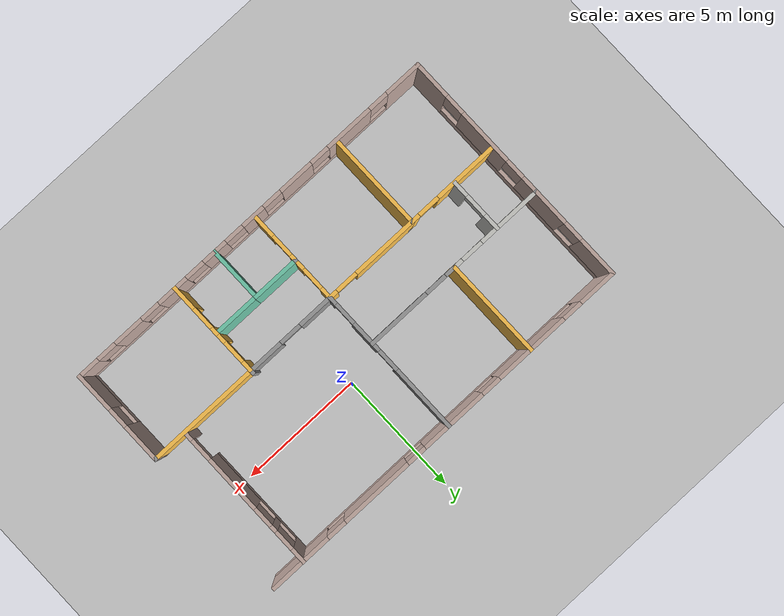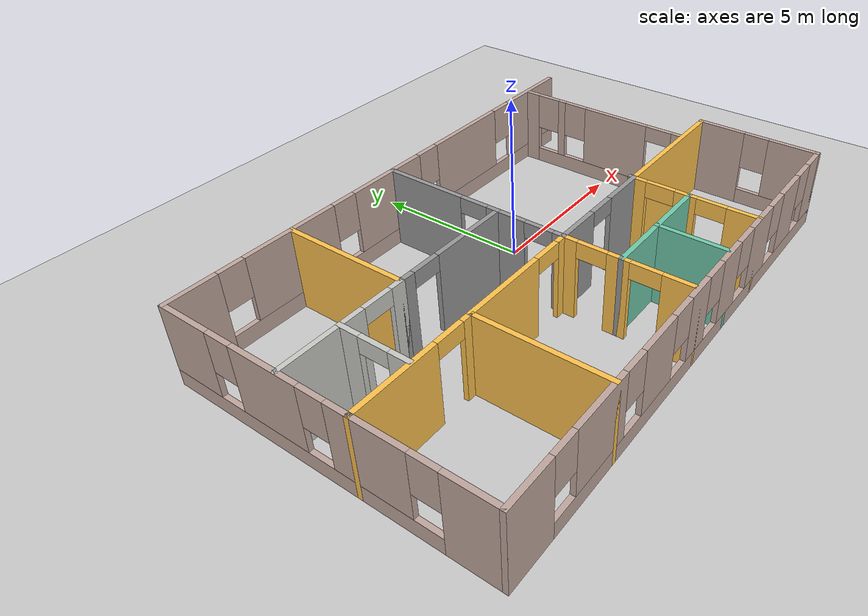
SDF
<sdf version="1.6">
 <world name="default">
  <model name="ground_plane">
   <static>1</static>
   <link name="link">
    <collision name="collision">
     <geometry><plane><normal>0 0 1</normal><size>100 100</size></plane></geometry>
     <surface>
      <contact><collide_bitmask>65535</collide_bitmask></contact>
      <friction><ode><mu>100</mu><mu2>50</mu2></ode></friction>
     </surface>
    </collision>
    <visual name="visual">
     <cast_shadows>0</cast_shadows>
     <geometry><plane><normal>0 0 1</normal><size>100 100</size></plane></geometry>
     <material>
      <script><uri>file://media/materials/scripts/gazebo.material</uri><name>Gazebo/Grey</name></script>
     </material>
    </visual>
   </link>
  </model>
  <model name="robothouse">
   <pose>-1.24708 -1.635 0 0 -0 0</pose>
   <link name="Wall_0">
    <pose>0 -4.925 0 0 -0 0</pose>
    <visual name="Wall_0_Visual_0">
     <pose>-7.22766 0 1.25 0 -0 0</pose>
     <geometry><box><size>1.54467 0.15 2.5</size></box></geometry>
     <material>
      <script><uri>file://media/materials/scripts/gazebo.material</uri><name>Gazebo/Grey</name></script>
      <ambient>0.760784 0.662745 0.627451 1</ambient>
     </material>
     <meta><layer>0</layer></meta>
    </visual>
    <collision name="Wall_0_Collision_0">
     <geometry><box><size>1.54467 0.15 2.5</size></box></geometry>
     <pose>-7.22766 0 1.25 0 -0 0</pose>
    </collision>
    <visual name="Wall_0_Visual_1">
     <pose>0.772336 0 0.25 0 -0 0</pose>
     <geometry><box><size>14.4553 0.15 0.5</size></box></geometry>
     <material>
      <script><uri>file://media/materials/scripts/gazebo.material</uri><name>Gazebo/Grey</name></script>
      <ambient>0.760784 0.662745 0.627451 1</ambient>
     </material>
     <meta><layer>0</layer></meta>
    </visual>
    <collision name="Wall_0_Collision_1">
     <geometry><box><size>14.4553 0.15 0.5</size></box></geometry>
     <pose>0.772336 0 0.25 0 -0 0</pose>
    </collision>
    <visual name="Wall_0_Visual_2">
     <pose>-4.67533 0 1.5 0 -0 0</pose>
     <geometry><box><size>1.96 0.15 2</size></box></geometry>
     <material>
      <script><uri>file://media/materials/scripts/gazebo.material</uri><name>Gazebo/Grey</name></script>
      <ambient>0.760784 0.662745 0.627451 1</ambient>
     </material>
     <meta><layer>0</layer></meta>
    </visual>
    <collision name="Wall_0_Collision_2">
     <geometry><box><size>1.96 0.15 2</size></box></geometry>
     <pose>-4.67533 0 1.5 0 -0 0</pose>
    </collision>
    <visual name="Wall_0_Visual_3">
     <pose>-2.18033 0 1.5 0 -0 0</pose>
     <geometry><box><size>1.43 0.15 2</size></box></geometry>
     <material>
      <script><uri>file://media/materials/scripts/gazebo.material</uri><name>Gazebo/Grey</name></script>
      <ambient>0.760784 0.662745 0.627451 1</ambient>
     </material>
     <meta><layer>0</layer></meta>
    </visual>
    <collision name="Wall_0_Collision_3">
     <geometry><box><size>1.43 0.15 2</size></box></geometry>
     <pose>-2.18033 0 1.5 0 -0 0</pose>
    </collision>
    <visual name="Wall_0_Visual_4">
     <pose>-0.180328 0 1.5 0 -0 0</pose>
     <geometry><box><size>0.97 0.15 2</size></box></geometry>
     <material>
      <script><uri>file://media/materials/scripts/gazebo.material</uri><name>Gazebo/Grey</name></script>
      <ambient>0.760784 0.662745 0.627451 1</ambient>
     </material>
     <meta><layer>0</layer></meta>
    </visual>
    <collision name="Wall_0_Collision_4">
     <geometry><box><size>0.97 0.15 2</size></box></geometry>
     <pose>-0.180328 0 1.5 0 -0 0</pose>
    </collision>
    <visual name="Wall_0_Visual_5">
     <pose>1.62467 0 1.5 0 -0 0</pose>
     <geometry><box><size>1.04 0.15 2</size></box></geometry>
     <material>
      <script><uri>file://media/materials/scripts/gazebo.material</uri><name>Gazebo/Grey</name></script>
      <ambient>0.760784 0.662745 0.627451 1</ambient>
     </material>
     <meta><layer>0</layer></meta>
    </visual>
    <collision name="Wall_0_Collision_5">
     <geometry><box><size>1.04 0.15 2</size></box></geometry>
     <pose>1.62467 0 1.5 0 -0 0</pose>
    </collision>
    <visual name="Wall_0_Visual_6">
     <pose>3.58967 0 1.5 0 -0 0</pose>
     <geometry><box><size>1.29 0.15 2</size></box></geometry>
     <material>
      <script><uri>file://media/materials/scripts/gazebo.material</uri><name>Gazebo/Grey</name></script>
      <ambient>0.760784 0.662745 0.627451 1</ambient>
     </material>
     <meta><layer>0</layer></meta>
    </visual>
    <collision name="Wall_0_Collision_6">
     <geometry><box><size>1.29 0.15 2</size></box></geometry>
     <pose>3.58967 0 1.5 0 -0 0</pose>
    </collision>
    <visual name="Wall_0_Visual_7">
     <pose>5.64967 0 1.5 0 -0 0</pose>
     <geometry><box><size>1.23 0.15 2</size></box></geometry>
     <material>
      <script><uri>file://media/materials/scripts/gazebo.material</uri><name>Gazebo/Grey</name></script>
      <ambient>0.760784 0.662745 0.627451 1</ambient>
     </material>
     <meta><layer>0</layer></meta>
    </visual>
    <collision name="Wall_0_Collision_7">
     <geometry><box><size>1.23 0.15 2</size></box></geometry>
     <pose>5.64967 0 1.5 0 -0 0</pose>
    </collision>
    <visual name="Wall_0_Visual_8">
     <pose>7.53234 0 1.5 0 -0 0</pose>
     <geometry><box><size>0.935327 0.15 2</size></box></geometry>
     <material>
      <script><uri>file://media/materials/scripts/gazebo.material</uri><name>Gazebo/Grey</name></script>
      <ambient>0.760784 0.662745 0.627451 1</ambient>
     </material>
     <meta><layer>0</layer></meta>
    </visual>
    <collision name="Wall_0_Collision_8">
     <geometry><box><size>0.935327 0.15 2</size></box></geometry>
     <pose>7.53234 0 1.5 0 -0 0</pose>
    </collision>
    <visual name="Wall_0_Visual_9">
     <pose>-6.05533 0 1.9 0 -0 0</pose>
     <geometry><box><size>0.8 0.15 1.2</size></box></geometry>
     <material>
      <script><uri>file://media/materials/scripts/gazebo.material</uri><name>Gazebo/Grey</name></script>
      <ambient>0.760784 0.662745 0.627451 1</ambient>
     </material>
     <meta><layer>0</layer></meta>
    </visual>
    <collision name="Wall_0_Collision_9">
     <geometry><box><size>0.8 0.15 1.2</size></box></geometry>
     <pose>-6.05533 0 1.9 0 -0 0</pose>
    </collision>
    <visual name="Wall_0_Visual_10">
     <pose>-3.29533 0 1.9 0 -0 0</pose>
     <geometry><box><size>0.8 0.15 1.2</size></box></geometry>
     <material>
      <script><uri>file://media/materials/scripts/gazebo.material</uri><name>Gazebo/Grey</name></script>
      <ambient>0.760784 0.662745 0.627451 1</ambient>
     </material>
     <meta><layer>0</layer></meta>
    </visual>
    <collision name="Wall_0_Collision_10">
     <geometry><box><size>0.8 0.15 1.2</size></box></geometry>
     <pose>-3.29533 0 1.9 0 -0 0</pose>
    </collision>
    <visual name="Wall_0_Visual_11">
     <pose>-1.06533 0 1.9 0 -0 0</pose>
     <geometry><box><size>0.8 0.15 1.2</size></box></geometry>
     <material>
      <script><uri>file://media/materials/scripts/gazebo.material</uri><name>Gazebo/Grey</name></script>
      <ambient>0.760784 0.662745 0.627451 1</ambient>
     </material>
     <meta><layer>0</layer></meta>
    </visual>
    <collision name="Wall_0_Collision_11">
     <geometry><box><size>0.8 0.15 1.2</size></box></geometry>
     <pose>-1.06533 0 1.9 0 -0 0</pose>
    </collision>
    <visual name="Wall_0_Visual_12">
     <pose>0.704672 0 1.9 0 -0 0</pose>
     <geometry><box><size>0.8 0.15 1.2</size></box></geometry>
     <material>
      <script><uri>file://media/materials/scripts/gazebo.material</uri><name>Gazebo/Grey</name></script>
      <ambient>0.760784 0.662745 0.627451 1</ambient>
     </material>
     <meta><layer>0</layer></meta>
    </visual>
    <collision name="Wall_0_Collision_12">
     <geometry><box><size>0.8 0.15 1.2</size></box></geometry>
     <pose>0.704672 0 1.9 0 -0 0</pose>
    </collision>
    <visual name="Wall_0_Visual_13">
     <pose>2.54467 0 1.9 0 -0 0</pose>
     <geometry><box><size>0.8 0.15 1.2</size></box></geometry>
     <material>
      <script><uri>file://media/materials/scripts/gazebo.material</uri><name>Gazebo/Grey</name></script>
      <ambient>0.760784 0.662745 0.627451 1</ambient>
     </material>
     <meta><layer>0</layer></meta>
    </visual>
    <collision name="Wall_0_Collision_13">
     <geometry><box><size>0.8 0.15 1.2</size></box></geometry>
     <pose>2.54467 0 1.9 0 -0 0</pose>
    </collision>
    <visual name="Wall_0_Visual_14">
     <pose>4.63467 0 1.9 0 -0 0</pose>
     <geometry><box><size>0.8 0.15 1.2</size></box></geometry>
     <material>
      <script><uri>file://media/materials/scripts/gazebo.material</uri><name>Gazebo/Grey</name></script>
      <ambient>0.760784 0.662745 0.627451 1</ambient>
     </material>
     <meta><layer>0</layer></meta>
    </visual>
    <collision name="Wall_0_Collision_14">
     <geometry><box><size>0.8 0.15 1.2</size></box></geometry>
     <pose>4.63467 0 1.9 0 -0 0</pose>
    </collision>
    <visual name="Wall_0_Visual_15">
     <pose>6.66467 0 1.9 0 -0 0</pose>
     <geometry><box><size>0.8 0.15 1.2</size></box></geometry>
     <material>
      <script><uri>file://media/materials/scripts/gazebo.material</uri><name>Gazebo/Grey</name></script>
      <ambient>0.760784 0.662745 0.627451 1</ambient>
     </material>
     <meta><layer>0</layer></meta>
    </visual>
    <collision name="Wall_0_Collision_15">
     <geometry><box><size>0.8 0.15 1.2</size></box></geometry>
     <pose>6.66467 0 1.9 0 -0 0</pose>
    </collision>
   </link>
   <link name="Wall_10">
    <collision name="Wall_10_Collision">
     <geometry><box><size>4 0.15 2.5</size></box></geometry>
     <pose>0 0 1.25 0 -0 0</pose>
    </collision>
    <visual name="Wall_10_Visual">
     <pose>0 0 1.25 0 -0 0</pose>
     <geometry><box><size>4 0.15 2.5</size></box></geometry>
     <material>
      <script><uri>file://media/materials/scripts/gazebo.material</uri><name>Gazebo/Grey</name></script>
      <ambient>1 0.764706 0.305882 1</ambient>
     </material>
     <meta><layer>0</layer></meta>
    </visual>
    <pose>-4.075 -3 0 0 -0 -1.5708</pose>
   </link>
   <link name="Wall_13">
    <collision name="Wall_13_Collision">
     <geometry><box><size>0.15 0.15 2.5</size></box></geometry>
     <pose>0 0 1.25 0 -0 0</pose>
    </collision>
    <visual name="Wall_13_Visual">
     <pose>0 0 1.25 0 -0 0</pose>
     <geometry><box><size>0.15 0.15 2.5</size></box></geometry>
     <material>
      <script><uri>file://media/materials/scripts/gazebo.material</uri><name>Gazebo/Grey</name></script>
      <ambient>1 1 1 1</ambient>
     </material>
     <meta><layer>0</layer></meta>
    </visual>
    <pose>-7.925 1.075 0 0 -0 0</pose>
   </link>
   <link name="Wall_14">
    <pose>-6 1.075 0 0 -0 0</pose>
    <visual name="Wall_14_Visual_0">
     <pose>-0.673769 0 1.25 0 -0 0</pose>
     <geometry><box><size>2.65246 0.15 2.5</size></box></geometry>
     <material>
      <script><uri>file://media/materials/scripts/gazebo.material</uri><name>Gazebo/CeilingTiled</name></script>
      <ambient>1 0.764706 0.305882 1</ambient>
     </material>
     <meta><layer>0</layer></meta>
    </visual>
    <collision name="Wall_14_Collision_0">
     <geometry><box><size>2.65246 0.15 2.5</size></box></geometry>
     <pose>-0.673769 0 1.25 0 -0 0</pose>
    </collision>
    <visual name="Wall_14_Visual_1">
     <pose>1.77623 0 1.25 0 -0 0</pose>
     <geometry><box><size>0.447537 0.15 2.5</size></box></geometry>
     <material>
      <script><uri>file://media/materials/scripts/gazebo.material</uri><name>Gazebo/CeilingTiled</name></script>
      <ambient>1 0.764706 0.305882 1</ambient>
     </material>
     <meta><layer>0</layer></meta>
    </visual>
    <collision name="Wall_14_Collision_1">
     <geometry><box><size>0.447537 0.15 2.5</size></box></geometry>
     <pose>1.77623 0 1.25 0 -0 0</pose>
    </collision>
    <visual name="Wall_14_Visual_2">
     <pose>1.10246 0 2.25 0 -0 0</pose>
     <geometry><box><size>0.9 0.15 0.5</size></box></geometry>
     <material>
      <script><uri>file://media/materials/scripts/gazebo.material</uri><name>Gazebo/CeilingTiled</name></script>
      <ambient>1 0.764706 0.305882 1</ambient>
     </material>
     <meta><layer>0</layer></meta>
    </visual>
    <collision name="Wall_14_Collision_2">
     <geometry><box><size>0.9 0.15 0.5</size></box></geometry>
     <pose>1.10246 0 2.25 0 -0 0</pose>
    </collision>
   </link>
   <link name="Wall_15">
    <collision name="Wall_15_Collision">
     <geometry><box><size>0.15 0.15 2.5</size></box></geometry>
     <pose>0 0 1.25 0 -0 0</pose>
    </collision>
    <visual name="Wall_15_Visual">
     <pose>0 0 1.25 0 -0 0</pose>
     <geometry><box><size>0.15 0.15 2.5</size></box></geometry>
     <material>
      <script><uri>file://media/materials/scripts/gazebo.material</uri><name>Gazebo/Grey</name></script>
      <ambient>1 1 1 1</ambient>
     </material>
     <meta><layer>0</layer></meta>
    </visual>
    <pose>-4.075 1.075 0 0 -0 0</pose>
   </link>
   <link name="Wall_16">
    <collision name="Wall_16_Collision">
     <geometry><box><size>4 0.15 2.5</size></box></geometry>
     <pose>0 0 1.25 0 -0 0</pose>
    </collision>
    <visual name="Wall_16_Visual">
     <pose>0 0 1.25 0 -0 0</pose>
     <geometry><box><size>4 0.15 2.5</size></box></geometry>
     <material>
      <script><uri>file://media/materials/scripts/gazebo.material</uri><name>Gazebo/Grey</name></script>
      <ambient>1 0.764706 0.305882 1</ambient>
     </material>
     <meta><layer>0</layer></meta>
    </visual>
    <pose>-4.075 3 0 0 -0 1.5708</pose>
   </link>
   <link name="Wall_2">
    <pose>-7.925 -0 0 0 -0 1.5708</pose>
    <visual name="Wall_2_Visual_0">
     <pose>-4.22011 0 1.25 0 -0 0</pose>
     <geometry><box><size>1.55978 0.15 2.5</size></box></geometry>
     <material>
      <script><uri>file://media/materials/scripts/gazebo.material</uri><name>Gazebo/Grey</name></script>
      <ambient>0.760784 0.662745 0.627451 1</ambient>
     </material>
     <meta><layer>0</layer></meta>
    </visual>
    <collision name="Wall_2_Collision_0">
     <geometry><box><size>1.55978 0.15 2.5</size></box></geometry>
     <pose>-4.22011 0 1.25 0 -0 0</pose>
    </collision>
    <visual name="Wall_2_Visual_1">
     <pose>0.77989 0 0.25 0 -0 0</pose>
     <geometry><box><size>8.44022 0.15 0.5</size></box></geometry>
     <material>
      <script><uri>file://media/materials/scripts/gazebo.material</uri><name>Gazebo/Grey</name></script>
      <ambient>0.760784 0.662745 0.627451 1</ambient>
     </material>
     <meta><layer>0</layer></meta>
    </visual>
    <collision name="Wall_2_Collision_1">
     <geometry><box><size>8.44022 0.15 0.5</size></box></geometry>
     <pose>0.77989 0 0.25 0 -0 0</pose>
    </collision>
    <visual name="Wall_2_Visual_2">
     <pose>-1.51522 0 1.5 0 -0 0</pose>
     <geometry><box><size>2.25 0.15 2</size></box></geometry>
     <material>
      <script><uri>file://media/materials/scripts/gazebo.material</uri><name>Gazebo/Grey</name></script>
      <ambient>0.760784 0.662745 0.627451 1</ambient>
     </material>
     <meta><layer>0</layer></meta>
    </visual>
    <collision name="Wall_2_Collision_2">
     <geometry><box><size>2.25 0.15 2</size></box></geometry>
     <pose>-1.51522 0 1.5 0 -0 0</pose>
    </collision>
    <visual name="Wall_2_Visual_3">
     <pose>1.47335 0 1.5 0 -0 0</pose>
     <geometry><box><size>2.12714 0.15 2</size></box></geometry>
     <material>
      <script><uri>file://media/materials/scripts/gazebo.material</uri><name>Gazebo/Grey</name></script>
      <ambient>0.760784 0.662745 0.627451 1</ambient>
     </material>
     <meta><layer>0</layer></meta>
    </visual>
    <collision name="Wall_2_Collision_3">
     <geometry><box><size>2.12714 0.15 2</size></box></geometry>
     <pose>1.47335 0 1.5 0 -0 0</pose>
    </collision>
    <visual name="Wall_2_Visual_4">
     <pose>4.16846 0 1.5 0 -0 0</pose>
     <geometry><box><size>1.66308 0.15 2</size></box></geometry>
     <material>
      <script><uri>file://media/materials/scripts/gazebo.material</uri><name>Gazebo/Grey</name></script>
      <ambient>0.760784 0.662745 0.627451 1</ambient>
     </material>
     <meta><layer>0</layer></meta>
    </visual>
    <collision name="Wall_2_Collision_4">
     <geometry><box><size>1.66308 0.15 2</size></box></geometry>
     <pose>4.16846 0 1.5 0 -0 0</pose>
    </collision>
    <visual name="Wall_2_Visual_5">
     <pose>-3.04022 0 1.9 0 -0 0</pose>
     <geometry><box><size>0.8 0.15 1.2</size></box></geometry>
     <material>
      <script><uri>file://media/materials/scripts/gazebo.material</uri><name>Gazebo/Grey</name></script>
      <ambient>0.760784 0.662745 0.627451 1</ambient>
     </material>
     <meta><layer>0</layer></meta>
    </visual>
    <collision name="Wall_2_Collision_5">
     <geometry><box><size>0.8 0.15 1.2</size></box></geometry>
     <pose>-3.04022 0 1.9 0 -0 0</pose>
    </collision>
    <visual name="Wall_2_Visual_6">
     <pose>0.00978 0 1.9 0 -0 0</pose>
     <geometry><box><size>0.8 0.15 1.2</size></box></geometry>
     <material>
      <script><uri>file://media/materials/scripts/gazebo.material</uri><name>Gazebo/Grey</name></script>
      <ambient>0.760784 0.662745 0.627451 1</ambient>
     </material>
     <meta><layer>0</layer></meta>
    </visual>
    <collision name="Wall_2_Collision_6">
     <geometry><box><size>0.8 0.15 1.2</size></box></geometry>
     <pose>0.00978 0 1.9 0 -0 0</pose>
    </collision>
    <visual name="Wall_2_Visual_7">
     <pose>2.93692 0 1.9 0 -0 0</pose>
     <geometry><box><size>0.8 0.15 1.2</size></box></geometry>
     <material>
      <script><uri>file://media/materials/scripts/gazebo.material</uri><name>Gazebo/Grey</name></script>
      <ambient>0.760784 0.662745 0.627451 1</ambient>
     </material>
     <meta><layer>0</layer></meta>
    </visual>
    <collision name="Wall_2_Collision_7">
     <geometry><box><size>0.8 0.15 1.2</size></box></geometry>
     <pose>2.93692 0 1.9 0 -0 0</pose>
    </collision>
   </link>
   <link name="Wall_21">
    <pose>-2.15 -1.075 0 0 -0 0</pose>
    <visual name="Wall_21_Visual_0">
     <pose>-0.654694 0 1.25 0 -0 0</pose>
     <geometry><box><size>2.69061 0.15 2.5</size></box></geometry>
     <material>
      <script><uri>file://media/materials/scripts/gazebo.material</uri><name>Gazebo/Grey</name></script>
      <ambient>1 0.764706 0.305882 1</ambient>
     </material>
     <meta><layer>0</layer></meta>
    </visual>
    <collision name="Wall_21_Collision_0">
     <geometry><box><size>2.69061 0.15 2.5</size></box></geometry>
     <pose>-0.654694 0 1.25 0 -0 0</pose>
    </collision>
    <visual name="Wall_21_Visual_1">
     <pose>1.79531 0 1.25 0 -0 0</pose>
     <geometry><box><size>0.409387 0.15 2.5</size></box></geometry>
     <material>
      <script><uri>file://media/materials/scripts/gazebo.material</uri><name>Gazebo/Grey</name></script>
      <ambient>1 0.764706 0.305882 1</ambient>
     </material>
     <meta><layer>0</layer></meta>
    </visual>
    <collision name="Wall_21_Collision_1">
     <geometry><box><size>0.409387 0.15 2.5</size></box></geometry>
     <pose>1.79531 0 1.25 0 -0 0</pose>
    </collision>
    <visual name="Wall_21_Visual_2">
     <pose>1.14061 0 2.25 0 -0 0</pose>
     <geometry><box><size>0.9 0.15 0.5</size></box></geometry>
     <material>
      <script><uri>file://media/materials/scripts/gazebo.material</uri><name>Gazebo/Grey</name></script>
      <ambient>1 0.764706 0.305882 1</ambient>
     </material>
     <meta><layer>0</layer></meta>
    </visual>
    <collision name="Wall_21_Collision_2">
     <geometry><box><size>0.9 0.15 0.5</size></box></geometry>
     <pose>1.14061 0 2.25 0 -0 0</pose>
    </collision>
   </link>
   <link name="Wall_22">
    <collision name="Wall_22_Collision">
     <geometry><box><size>0.15 0.15 2.5</size></box></geometry>
     <pose>0 0 1.25 0 -0 0</pose>
    </collision>
    <visual name="Wall_22_Visual">
     <pose>0 0 1.25 0 -0 0</pose>
     <geometry><box><size>0.15 0.15 2.5</size></box></geometry>
     <material>
      <script><uri>file://media/materials/scripts/gazebo.material</uri><name>Gazebo/Grey</name></script>
      <ambient>1 1 1 1</ambient>
     </material>
     <meta><layer>0</layer></meta>
    </visual>
    <pose>-0.225 -1.075 0 0 -0 0</pose>
   </link>
   <link name="Wall_26">
    <pose>-0.225 -3 0 0 -0 -1.5708</pose>
    <visual name="Wall_26_Visual_0">
     <pose>-1.74489 0 1.25 0 -0 0</pose>
     <geometry><box><size>0.51022 0.15 2.5</size></box></geometry>
     <material>
      <script><uri>file://media/materials/scripts/gazebo.material</uri><name>Gazebo/Grey</name></script>
      <ambient>1 0.764706 0.305882 1</ambient>
     </material>
     <meta><layer>0</layer></meta>
    </visual>
    <collision name="Wall_26_Collision_0">
     <geometry><box><size>0.51022 0.15 2.5</size></box></geometry>
     <pose>-1.74489 0 1.25 0 -0 0</pose>
    </collision>
    <visual name="Wall_26_Visual_1">
     <pose>-0.25978 0 1.25 0 -0 0</pose>
     <geometry><box><size>0.66 0.15 2.5</size></box></geometry>
     <material>
      <script><uri>file://media/materials/scripts/gazebo.material</uri><name>Gazebo/Grey</name></script>
      <ambient>1 0.764706 0.305882 1</ambient>
     </material>
     <meta><layer>0</layer></meta>
    </visual>
    <collision name="Wall_26_Collision_1">
     <geometry><box><size>0.66 0.15 2.5</size></box></geometry>
     <pose>-0.25978 0 1.25 0 -0 0</pose>
    </collision>
    <visual name="Wall_26_Visual_2">
     <pose>1.48511 0 1.25 0 -0 0</pose>
     <geometry><box><size>1.02978 0.15 2.5</size></box></geometry>
     <material>
      <script><uri>file://media/materials/scripts/gazebo.material</uri><name>Gazebo/Grey</name></script>
      <ambient>1 0.764706 0.305882 1</ambient>
     </material>
     <meta><layer>0</layer></meta>
    </visual>
    <collision name="Wall_26_Collision_2">
     <geometry><box><size>1.02978 0.15 2.5</size></box></geometry>
     <pose>1.48511 0 1.25 0 -0 0</pose>
    </collision>
    <visual name="Wall_26_Visual_3">
     <pose>-1.03978 0 2.25 0 -0 0</pose>
     <geometry><box><size>0.9 0.15 0.5</size></box></geometry>
     <material>
      <script><uri>file://media/materials/scripts/gazebo.material</uri><name>Gazebo/Grey</name></script>
      <ambient>1 0.764706 0.305882 1</ambient>
     </material>
     <meta><layer>0</layer></meta>
    </visual>
    <collision name="Wall_26_Collision_3">
     <geometry><box><size>0.9 0.15 0.5</size></box></geometry>
     <pose>-1.03978 0 2.25 0 -0 0</pose>
    </collision>
    <visual name="Wall_26_Visual_4">
     <pose>0.52022 0 2.25 0 -0 0</pose>
     <geometry><box><size>0.9 0.15 0.5</size></box></geometry>
     <material>
      <script><uri>file://media/materials/scripts/gazebo.material</uri><name>Gazebo/Grey</name></script>
      <ambient>1 0.764706 0.305882 1</ambient>
     </material>
     <meta><layer>0</layer></meta>
    </visual>
    <collision name="Wall_26_Collision_4">
     <geometry><box><size>0.9 0.15 0.5</size></box></geometry>
     <pose>0.52022 0 2.25 0 -0 0</pose>
    </collision>
   </link>
   <link name="Wall_28">
    <collision name="Wall_28_Collision">
     <geometry><box><size>0.15 0.15 2.5</size></box></geometry>
     <pose>0 0 1.25 0 -0 0</pose>
    </collision>
    <visual name="Wall_28_Visual">
     <pose>0 0 1.25 0 -0 0</pose>
     <geometry><box><size>0.15 0.15 2.5</size></box></geometry>
     <material>
      <script><uri>file://media/materials/scripts/gazebo.material</uri><name>Gazebo/Grey</name></script>
      <ambient>1 1 1 1</ambient>
     </material>
     <meta><layer>0</layer></meta>
    </visual>
    <pose>-0.225 -2.825 0 0 -0 0</pose>
   </link>
   <link name="Wall_29">
    <collision name="Wall_29_Collision">
     <geometry><box><size>2 0.15 2.5</size></box></geometry>
     <pose>0 0 1.25 0 -0 0</pose>
    </collision>
    <visual name="Wall_29_Visual">
     <pose>0 0 1.25 0 -0 0</pose>
     <geometry><box><size>2 0.15 2.5</size></box></geometry>
     <material>
      <script><uri>file://media/materials/scripts/gazebo.material</uri><name>Gazebo/Grey</name></script>
      <ambient>0.435294 0.796078 0.67451 1</ambient>
     </material>
     <meta><layer>0</layer></meta>
    </visual>
    <pose>0.700001 -2.825 0 0 -0 0</pose>
   </link>
   <link name="Wall_30">
    <collision name="Wall_30_Collision">
     <geometry><box><size>0.15 0.15 2.5</size></box></geometry>
     <pose>0 0 1.25 0 -0 0</pose>
    </collision>
    <visual name="Wall_30_Visual">
     <pose>0 0 1.25 0 -0 0</pose>
     <geometry><box><size>0.15 0.15 2.5</size></box></geometry>
     <material>
      <script><uri>file://media/materials/scripts/gazebo.material</uri><name>Gazebo/Grey</name></script>
      <ambient>1 1 1 1</ambient>
     </material>
     <meta><layer>0</layer></meta>
    </visual>
    <pose>1.625 -2.825 0 0 -0 0</pose>
   </link>
   <link name="Wall_31">
    <collision name="Wall_31_Collision">
     <geometry><box><size>2.25 0.15 2.5</size></box></geometry>
     <pose>0 0 1.25 0 -0 0</pose>
    </collision>
    <visual name="Wall_31_Visual">
     <pose>0 0 1.25 0 -0 0</pose>
     <geometry><box><size>2.25 0.15 2.5</size></box></geometry>
     <material>
      <script><uri>file://media/materials/scripts/gazebo.material</uri><name>Gazebo/Grey</name></script>
      <ambient>0.435294 0.796078 0.67451 1</ambient>
     </material>
     <meta><layer>0</layer></meta>
    </visual>
    <pose>1.625 -3.875 0 0 -0 -1.5708</pose>
   </link>
   <link name="Wall_33">
    <collision name="Wall_33_Collision">
     <geometry><box><size>2 0.15 2.5</size></box></geometry>
     <pose>0 0 1.25 0 -0 0</pose>
    </collision>
    <visual name="Wall_33_Visual">
     <pose>0 0 1.25 0 -0 0</pose>
     <geometry><box><size>2 0.15 2.5</size></box></geometry>
     <material>
      <script><uri>file://media/materials/scripts/gazebo.material</uri><name>Gazebo/Grey</name></script>
      <ambient>0.435294 0.796078 0.67451 1</ambient>
     </material>
     <meta><layer>0</layer></meta>
    </visual>
    <pose>2.55 -2.825 0 0 -0 0</pose>
   </link>
   <link name="Wall_34">
    <collision name="Wall_34_Collision">
     <geometry><box><size>0.15 0.15 2.5</size></box></geometry>
     <pose>0 0 1.25 0 -0 0</pose>
    </collision>
    <visual name="Wall_34_Visual">
     <pose>0 0 1.25 0 -0 0</pose>
     <geometry><box><size>0.15 0.15 2.5</size></box></geometry>
     <material>
      <script><uri>file://media/materials/scripts/gazebo.material</uri><name>Gazebo/Grey</name></script>
      <ambient>1 1 1 1</ambient>
     </material>
     <meta><layer>0</layer></meta>
    </visual>
    <pose>3.475 -2.825 0 0 -0 0</pose>
   </link>
   <link name="Wall_35">
    <pose>3.475 -3.875 0 0 -0 -1.5708</pose>
    <visual name="Wall_35_Visual_0">
     <pose>-0.95989 0 1.25 0 -0 0</pose>
     <geometry><box><size>0.33022 0.15 2.5</size></box></geometry>
     <material>
      <script><uri>file://media/materials/scripts/gazebo.material</uri><name>Gazebo/Grey</name></script>
      <ambient>1 0.764706 0.305882 1</ambient>
     </material>
     <meta><layer>0</layer></meta>
    </visual>
    <collision name="Wall_35_Collision_0">
     <geometry><box><size>0.33022 0.15 2.5</size></box></geometry>
     <pose>-0.95989 0 1.25 0 -0 0</pose>
    </collision>
    <visual name="Wall_35_Visual_1">
     <pose>0.61511 0 1.25 0 -0 0</pose>
     <geometry><box><size>1.01978 0.15 2.5</size></box></geometry>
     <material>
      <script><uri>file://media/materials/scripts/gazebo.material</uri><name>Gazebo/Grey</name></script>
      <ambient>1 0.764706 0.305882 1</ambient>
     </material>
     <meta><layer>0</layer></meta>
    </visual>
    <collision name="Wall_35_Collision_1">
     <geometry><box><size>1.01978 0.15 2.5</size></box></geometry>
     <pose>0.61511 0 1.25 0 -0 0</pose>
    </collision>
    <visual name="Wall_35_Visual_2">
     <pose>-0.34478 0 2.25 0 -0 0</pose>
     <geometry><box><size>0.9 0.15 0.5</size></box></geometry>
     <material>
      <script><uri>file://media/materials/scripts/gazebo.material</uri><name>Gazebo/Grey</name></script>
      <ambient>1 0.764706 0.305882 1</ambient>
     </material>
     <meta><layer>0</layer></meta>
    </visual>
    <collision name="Wall_35_Collision_2">
     <geometry><box><size>0.9 0.15 0.5</size></box></geometry>
     <pose>-0.34478 0 2.25 0 -0 0</pose>
    </collision>
   </link>
   <link name="Wall_38">
    <collision name="Wall_38_Collision">
     <geometry><box><size>0.15 0.15 2.5</size></box></geometry>
     <pose>0 0 1.25 0 -0 0</pose>
    </collision>
    <visual name="Wall_38_Visual">
     <pose>0 0 1.25 0 -0 0</pose>
     <geometry><box><size>0.15 0.15 2.5</size></box></geometry>
     <material>
      <script><uri>file://media/materials/scripts/gazebo.material</uri><name>Gazebo/Grey</name></script>
      <ambient>1 1 1 1</ambient>
     </material>
     <meta><layer>0</layer></meta>
    </visual>
    <pose>7.925 -1.075 0 0 -0 0</pose>
   </link>
   <link name="Wall_4">
    <pose>0 4.925 0 0 -0 0</pose>
    <visual name="Wall_4_Visual_0">
     <pose>-7.21623 0 1.25 0 -0 0</pose>
     <geometry><box><size>1.56754 0.15 2.5</size></box></geometry>
     <material>
      <script><uri>file://media/materials/scripts/gazebo.material</uri><name>Gazebo/Grey</name></script>
      <ambient>0.760784 0.662745 0.627451 1</ambient>
     </material>
     <meta><layer>0</layer></meta>
    </visual>
    <collision name="Wall_4_Collision_0">
     <geometry><box><size>1.56754 0.15 2.5</size></box></geometry>
     <pose>-7.21623 0 1.25 0 -0 0</pose>
    </collision>
    <visual name="Wall_4_Visual_1">
     <pose>0.783771 0 0.25 0 -0 0</pose>
     <geometry><box><size>14.4325 0.15 0.5</size></box></geometry>
     <material>
      <script><uri>file://media/materials/scripts/gazebo.material</uri><name>Gazebo/Grey</name></script>
      <ambient>0.760784 0.662745 0.627451 1</ambient>
     </material>
     <meta><layer>0</layer></meta>
    </visual>
    <collision name="Wall_4_Collision_1">
     <geometry><box><size>14.4325 0.15 0.5</size></box></geometry>
     <pose>0.783771 0 0.25 0 -0 0</pose>
    </collision>
    <visual name="Wall_4_Visual_2">
     <pose>-4.12376 0 1.5 0 -0 0</pose>
     <geometry><box><size>3.0174 0.15 2</size></box></geometry>
     <material>
      <script><uri>file://media/materials/scripts/gazebo.material</uri><name>Gazebo/Grey</name></script>
      <ambient>0.760784 0.662745 0.627451 1</ambient>
     </material>
     <meta><layer>0</layer></meta>
    </visual>
    <collision name="Wall_4_Collision_2">
     <geometry><box><size>3.0174 0.15 2</size></box></geometry>
     <pose>-4.12376 0 1.5 0 -0 0</pose>
    </collision>
    <visual name="Wall_4_Visual_3">
     <pose>-0.466056 0 1.5 0 -0 0</pose>
     <geometry><box><size>2.69801 0.15 2</size></box></geometry>
     <material>
      <script><uri>file://media/materials/scripts/gazebo.material</uri><name>Gazebo/Grey</name></script>
      <ambient>0.760784 0.662745 0.627451 1</ambient>
     </material>
     <meta><layer>0</layer></meta>
    </visual>
    <collision name="Wall_4_Collision_3">
     <geometry><box><size>2.69801 0.15 2</size></box></geometry>
     <pose>-0.466056 0 1.5 0 -0 0</pose>
    </collision>
    <visual name="Wall_4_Visual_4">
     <pose>3.14602 0 1.5 0 -0 0</pose>
     <geometry><box><size>2.92614 0.15 2</size></box></geometry>
     <material>
      <script><uri>file://media/materials/scripts/gazebo.material</uri><name>Gazebo/Grey</name></script>
      <ambient>0.760784 0.662745 0.627451 1</ambient>
     </material>
     <meta><layer>0</layer></meta>
    </visual>
    <collision name="Wall_4_Collision_4">
     <geometry><box><size>2.92614 0.15 2</size></box></geometry>
     <pose>3.14602 0 1.5 0 -0 0</pose>
    </collision>
    <visual name="Wall_4_Visual_5">
     <pose>6.70455 0 1.5 0 -0 0</pose>
     <geometry><box><size>2.59091 0.15 2</size></box></geometry>
     <material>
      <script><uri>file://media/materials/scripts/gazebo.material</uri><name>Gazebo/Grey</name></script>
      <ambient>0.760784 0.662745 0.627451 1</ambient>
     </material>
     <meta><layer>0</layer></meta>
    </visual>
    <collision name="Wall_4_Collision_5">
     <geometry><box><size>2.59091 0.15 2</size></box></geometry>
     <pose>6.70455 0 1.5 0 -0 0</pose>
    </collision>
    <visual name="Wall_4_Visual_6">
     <pose>-6.03246 0 1.9 0 -0 0</pose>
     <geometry><box><size>0.8 0.15 1.2</size></box></geometry>
     <material>
      <script><uri>file://media/materials/scripts/gazebo.material</uri><name>Gazebo/Grey</name></script>
      <ambient>0.760784 0.662745 0.627451 1</ambient>
     </material>
     <meta><layer>0</layer></meta>
    </visual>
    <collision name="Wall_4_Collision_6">
     <geometry><box><size>0.8 0.15 1.2</size></box></geometry>
     <pose>-6.03246 0 1.9 0 -0 0</pose>
    </collision>
    <visual name="Wall_4_Visual_7">
     <pose>-2.21506 0 1.9 0 -0 0</pose>
     <geometry><box><size>0.8 0.15 1.2</size></box></geometry>
     <material>
      <script><uri>file://media/materials/scripts/gazebo.material</uri><name>Gazebo/Grey</name></script>
      <ambient>0.760784 0.662745 0.627451 1</ambient>
     </material>
     <meta><layer>0</layer></meta>
    </visual>
    <collision name="Wall_4_Collision_7">
     <geometry><box><size>0.8 0.15 1.2</size></box></geometry>
     <pose>-2.21506 0 1.9 0 -0 0</pose>
    </collision>
    <visual name="Wall_4_Visual_8">
     <pose>1.28295 0 1.9 0 -0 0</pose>
     <geometry><box><size>0.8 0.15 1.2</size></box></geometry>
     <material>
      <script><uri>file://media/materials/scripts/gazebo.material</uri><name>Gazebo/Grey</name></script>
      <ambient>0.760784 0.662745 0.627451 1</ambient>
     </material>
     <meta><layer>0</layer></meta>
    </visual>
    <collision name="Wall_4_Collision_8">
     <geometry><box><size>0.8 0.15 1.2</size></box></geometry>
     <pose>1.28295 0 1.9 0 -0 0</pose>
    </collision>
    <visual name="Wall_4_Visual_9">
     <pose>5.00909 0 1.9 0 -0 0</pose>
     <geometry><box><size>0.8 0.15 1.2</size></box></geometry>
     <material>
      <script><uri>file://media/materials/scripts/gazebo.material</uri><name>Gazebo/Grey</name></script>
      <ambient>0.760784 0.662745 0.627451 1</ambient>
     </material>
     <meta><layer>0</layer></meta>
    </visual>
    <collision name="Wall_4_Collision_9">
     <geometry><box><size>0.8 0.15 1.2</size></box></geometry>
     <pose>5.00909 0 1.9 0 -0 0</pose>
    </collision>
   </link>
   <link name="Wall_43">
    <collision name="Wall_43_Collision">
     <geometry><box><size>0.15 0.15 2.5</size></box></geometry>
     <pose>0 0 1.25 0 -0 0</pose>
    </collision>
    <visual name="Wall_43_Visual">
     <pose>0 0 1.25 0 -0 0</pose>
     <geometry><box><size>0.15 0.15 2.5</size></box></geometry>
     <material>
      <script><uri>file://media/materials/scripts/gazebo.material</uri><name>Gazebo/Grey</name></script>
      <ambient>1 1 1 1</ambient>
     </material>
     <meta><layer>0</layer></meta>
    </visual>
    <pose>3.475 -2.825 0 0 -0 0</pose>
   </link>
   <link name="Wall_45">
    <collision name="Wall_45_Collision">
     <geometry><box><size>0.15 0.15 2.5</size></box></geometry>
     <pose>0 0 1.25 0 -0 0</pose>
    </collision>
    <visual name="Wall_45_Visual">
     <pose>0 0 1.25 0 -0 0</pose>
     <geometry><box><size>0.15 0.15 2.5</size></box></geometry>
     <material>
      <script><uri>file://media/materials/scripts/gazebo.material</uri><name>Gazebo/Grey</name></script>
      <ambient>1 1 1 1</ambient>
     </material>
     <meta><layer>0</layer></meta>
    </visual>
    <pose>3.475 -0.975 0 0 -0 0</pose>
   </link>
   <link name="Wall_50">
    <collision name="Wall_50_Collision">
     <geometry><box><size>4.6 0.15 2.5</size></box></geometry>
     <pose>0 0 1.25 0 -0 0</pose>
    </collision>
    <visual name="Wall_50_Visual">
     <pose>0 0 1.25 0 -0 0</pose>
     <geometry><box><size>4.6 0.15 2.5</size></box></geometry>
     <material>
      <script><uri>file://media/materials/scripts/gazebo.material</uri><name>Gazebo/Grey</name></script>
      <ambient>1 0.764706 0.305882 1</ambient>
     </material>
     <meta><layer>0</layer></meta>
    </visual>
    <pose>5.7 -1.075 0 0 -0 0</pose>
   </link>
   <link name="Wall_51">
    <pose>7.925 -3 0 0 -0 -1.5708</pose>
    <visual name="Wall_51_Visual_0">
     <pose>-1.20489 0 1.25 0 -0 0</pose>
     <geometry><box><size>1.59022 0.15 2.5</size></box></geometry>
     <material>
      <script><uri>file://media/materials/scripts/gazebo.material</uri><name>Gazebo/Grey</name></script>
      <ambient>0.760784 0.662745 0.627451 1</ambient>
     </material>
     <meta><layer>0</layer></meta>
    </visual>
    <collision name="Wall_51_Collision_0">
     <geometry><box><size>1.59022 0.15 2.5</size></box></geometry>
     <pose>-1.20489 0 1.25 0 -0 0</pose>
    </collision>
    <visual name="Wall_51_Visual_1">
     <pose>0.79511 0 0.25 0 -0 0</pose>
     <geometry><box><size>2.40978 0.15 0.5</size></box></geometry>
     <material>
      <script><uri>file://media/materials/scripts/gazebo.material</uri><name>Gazebo/Grey</name></script>
      <ambient>0.760784 0.662745 0.627451 1</ambient>
     </material>
     <meta><layer>0</layer></meta>
    </visual>
    <collision name="Wall_51_Collision_1">
     <geometry><box><size>2.40978 0.15 0.5</size></box></geometry>
     <pose>0.79511 0 0.25 0 -0 0</pose>
    </collision>
    <visual name="Wall_51_Visual_2">
     <pose>1.19511 0 1.5 0 -0 0</pose>
     <geometry><box><size>1.60978 0.15 2</size></box></geometry>
     <material>
      <script><uri>file://media/materials/scripts/gazebo.material</uri><name>Gazebo/Grey</name></script>
      <ambient>0.760784 0.662745 0.627451 1</ambient>
     </material>
     <meta><layer>0</layer></meta>
    </visual>
    <collision name="Wall_51_Collision_2">
     <geometry><box><size>1.60978 0.15 2</size></box></geometry>
     <pose>1.19511 0 1.5 0 -0 0</pose>
    </collision>
    <visual name="Wall_51_Visual_3">
     <pose>-0.00978 0 1.9 0 -0 0</pose>
     <geometry><box><size>0.8 0.15 1.2</size></box></geometry>
     <material>
      <script><uri>file://media/materials/scripts/gazebo.material</uri><name>Gazebo/Grey</name></script>
      <ambient>0.760784 0.662745 0.627451 1</ambient>
     </material>
     <meta><layer>0</layer></meta>
    </visual>
    <collision name="Wall_51_Collision_3">
     <geometry><box><size>0.8 0.15 1.2</size></box></geometry>
     <pose>-0.00978 0 1.9 0 -0 0</pose>
    </collision>
   </link>
   <link name="Wall_53">
    <pose>3.475 -1.95 0 0 -0 -1.5708</pose>
    <visual name="Wall_53_Visual_0">
     <pose>-0.69989 0 1.25 0 -0 0</pose>
     <geometry><box><size>0.50022 0.15 2.5</size></box></geometry>
     <material>
      <script><uri>file://media/materials/scripts/gazebo.material</uri><name>Gazebo/Grey</name></script>
      <ambient>1 0.764706 0.305882 1</ambient>
     </material>
     <meta><layer>0</layer></meta>
    </visual>
    <collision name="Wall_53_Collision_0">
     <geometry><box><size>0.50022 0.15 2.5</size></box></geometry>
     <pose>-0.69989 0 1.25 0 -0 0</pose>
    </collision>
    <visual name="Wall_53_Visual_1">
     <pose>0.70011 0 1.25 0 -0 0</pose>
     <geometry><box><size>0.49978 0.15 2.5</size></box></geometry>
     <material>
      <script><uri>file://media/materials/scripts/gazebo.material</uri><name>Gazebo/Grey</name></script>
      <ambient>1 0.764706 0.305882 1</ambient>
     </material>
     <meta><layer>0</layer></meta>
    </visual>
    <collision name="Wall_53_Collision_1">
     <geometry><box><size>0.49978 0.15 2.5</size></box></geometry>
     <pose>0.70011 0 1.25 0 -0 0</pose>
    </collision>
    <visual name="Wall_53_Visual_2">
     <pose>0.00022 0 2.25 0 -0 0</pose>
     <geometry><box><size>0.9 0.15 0.5</size></box></geometry>
     <material>
      <script><uri>file://media/materials/scripts/gazebo.material</uri><name>Gazebo/Grey</name></script>
      <ambient>1 0.764706 0.305882 1</ambient>
     </material>
     <meta><layer>0</layer></meta>
    </visual>
    <collision name="Wall_53_Collision_2">
     <geometry><box><size>0.9 0.15 0.5</size></box></geometry>
     <pose>0.00022 0 2.25 0 -0 0</pose>
    </collision>
   </link>
   <link name="Wall_58">
    <pose>-2.15 1.075 0 0 -0 0</pose>
    <visual name="Wall_58_Visual_0">
     <pose>-1.75237 0 1.25 0 -0 0</pose>
     <geometry><box><size>0.495263 0.15 2.5</size></box></geometry>
     <material>
      <script><uri>file://media/materials/scripts/gazebo.material</uri><name>Gazebo/Grey</name></script>
      <ambient>1 1 1 1</ambient>
     </material>
     <meta><layer>0</layer></meta>
    </visual>
    <collision name="Wall_58_Collision_0">
     <geometry><box><size>0.495263 0.15 2.5</size></box></geometry>
     <pose>-1.75237 0 1.25 0 -0 0</pose>
    </collision>
    <visual name="Wall_58_Visual_1">
     <pose>0.697631 0 1.25 0 -0 0</pose>
     <geometry><box><size>2.60474 0.15 2.5</size></box></geometry>
     <material>
      <script><uri>file://media/materials/scripts/gazebo.material</uri><name>Gazebo/Grey</name></script>
      <ambient>1 1 1 1</ambient>
     </material>
     <meta><layer>0</layer></meta>
    </visual>
    <collision name="Wall_58_Collision_1">
     <geometry><box><size>2.60474 0.15 2.5</size></box></geometry>
     <pose>0.697631 0 1.25 0 -0 0</pose>
    </collision>
    <visual name="Wall_58_Visual_2">
     <pose>-1.05474 0 2.25 0 -0 0</pose>
     <geometry><box><size>0.9 0.15 0.5</size></box></geometry>
     <material>
      <script><uri>file://media/materials/scripts/gazebo.material</uri><name>Gazebo/Grey</name></script>
      <ambient>1 1 1 1</ambient>
     </material>
     <meta><layer>0</layer></meta>
    </visual>
    <collision name="Wall_58_Collision_2">
     <geometry><box><size>0.9 0.15 0.5</size></box></geometry>
     <pose>-1.05474 0 2.25 0 -0 0</pose>
    </collision>
   </link>
   <link name="Wall_61">
    <pose>-0.225 3 0 0 -0 1.5708</pose>
    <visual name="Wall_61_Visual_0">
     <pose>-1.79201 0 1.25 0 -0 0</pose>
     <geometry><box><size>0.415971 0.15 2.5</size></box></geometry>
     <material>
      <script><uri>file://media/materials/scripts/gazebo.material</uri><name>Gazebo/Grey</name></script>
      <ambient>1 1 1 1</ambient>
     </material>
     <meta><layer>0</layer></meta>
    </visual>
    <collision name="Wall_61_Collision_0">
     <geometry><box><size>0.415971 0.15 2.5</size></box></geometry>
     <pose>-1.79201 0 1.25 0 -0 0</pose>
    </collision>
    <visual name="Wall_61_Visual_1">
     <pose>0.657985 0 1.25 0 -0 0</pose>
     <geometry><box><size>2.68403 0.15 2.5</size></box></geometry>
     <material>
      <script><uri>file://media/materials/scripts/gazebo.material</uri><name>Gazebo/Grey</name></script>
      <ambient>1 1 1 1</ambient>
     </material>
     <meta><layer>0</layer></meta>
    </visual>
    <collision name="Wall_61_Collision_1">
     <geometry><box><size>2.68403 0.15 2.5</size></box></geometry>
     <pose>0.657985 0 1.25 0 -0 0</pose>
    </collision>
    <visual name="Wall_61_Visual_2">
     <pose>-1.13403 0 2.25 0 -0 0</pose>
     <geometry><box><size>0.9 0.15 0.5</size></box></geometry>
     <material>
      <script><uri>file://media/materials/scripts/gazebo.material</uri><name>Gazebo/Grey</name></script>
      <ambient>1 1 1 1</ambient>
     </material>
     <meta><layer>0</layer></meta>
    </visual>
    <collision name="Wall_61_Collision_2">
     <geometry><box><size>0.9 0.15 0.5</size></box></geometry>
     <pose>-1.13403 0 2.25 0 -0 0</pose>
    </collision>
   </link>
   <link name="Wall_68">
    <pose>6.575 2 0 0 -0 -1.5708</pose>
    <visual name="Wall_68_Visual_0">
     <pose>-2.67795 0 1.25 0 -0 0</pose>
     <geometry><box><size>0.644092 0.15 2.5</size></box></geometry>
     <material>
      <script><uri>file://media/materials/scripts/gazebo.material</uri><name>Gazebo/Grey</name></script>
      <ambient>0.760784 0.662745 0.627451 1</ambient>
     </material>
     <meta><layer>0</layer></meta>
    </visual>
    <collision name="Wall_68_Collision_0">
     <geometry><box><size>0.644092 0.15 2.5</size></box></geometry>
     <pose>-2.67795 0 1.25 0 -0 0</pose>
    </collision>
    <visual name="Wall_68_Visual_1">
     <pose>2.85011 0 1.25 0 -0 0</pose>
     <geometry><box><size>0.29978 0.15 2.5</size></box></geometry>
     <material>
      <script><uri>file://media/materials/scripts/gazebo.material</uri><name>Gazebo/Grey</name></script>
      <ambient>0.760784 0.662745 0.627451 1</ambient>
     </material>
     <meta><layer>0</layer></meta>
    </visual>
    <collision name="Wall_68_Collision_1">
     <geometry><box><size>0.29978 0.15 2.5</size></box></geometry>
     <pose>2.85011 0 1.25 0 -0 0</pose>
    </collision>
    <visual name="Wall_68_Visual_2">
     <pose>-0.277844 0 0.25 0 -0 0</pose>
     <geometry><box><size>4.15613 0.15 0.5</size></box></geometry>
     <material>
      <script><uri>file://media/materials/scripts/gazebo.material</uri><name>Gazebo/Grey</name></script>
      <ambient>0.760784 0.662745 0.627451 1</ambient>
     </material>
     <meta><layer>0</layer></meta>
    </visual>
    <collision name="Wall_68_Collision_2">
     <geometry><box><size>4.15613 0.15 0.5</size></box></geometry>
     <pose>-0.277844 0 0.25 0 -0 0</pose>
    </collision>
    <visual name="Wall_68_Visual_3">
     <pose>-1.4236 0 1.5 0 -0 0</pose>
     <geometry><box><size>0.264612 0.15 2</size></box></geometry>
     <material>
      <script><uri>file://media/materials/scripts/gazebo.material</uri><name>Gazebo/Grey</name></script>
      <ambient>0.760784 0.662745 0.627451 1</ambient>
     </material>
     <meta><layer>0</layer></meta>
    </visual>
    <collision name="Wall_68_Collision_3">
     <geometry><box><size>0.264612 0.15 2</size></box></geometry>
     <pose>-1.4236 0 1.5 0 -0 0</pose>
    </collision>
    <visual name="Wall_68_Visual_4">
     <pose>0.654462 0 1.5 0 -0 0</pose>
     <geometry><box><size>2.29152 0.15 2</size></box></geometry>
     <material>
      <script><uri>file://media/materials/scripts/gazebo.material</uri><name>Gazebo/Grey</name></script>
      <ambient>0.760784 0.662745 0.627451 1</ambient>
     </material>
     <meta><layer>0</layer></meta>
    </visual>
    <collision name="Wall_68_Collision_4">
     <geometry><box><size>2.29152 0.15 2</size></box></geometry>
     <pose>0.654462 0 1.5 0 -0 0</pose>
    </collision>
    <visual name="Wall_68_Visual_5">
     <pose>-1.95591 0 1.9 0 -0 0</pose>
     <geometry><box><size>0.8 0.15 1.2</size></box></geometry>
     <material>
      <script><uri>file://media/materials/scripts/gazebo.material</uri><name>Gazebo/Grey</name></script>
      <ambient>0.760784 0.662745 0.627451 1</ambient>
     </material>
     <meta><layer>0</layer></meta>
    </visual>
    <collision name="Wall_68_Collision_5">
     <geometry><box><size>0.8 0.15 1.2</size></box></geometry>
     <pose>-1.95591 0 1.9 0 -0 0</pose>
    </collision>
    <visual name="Wall_68_Visual_6">
     <pose>-0.891295 0 1.9 0 -0 0</pose>
     <geometry><box><size>0.8 0.15 1.2</size></box></geometry>
     <material>
      <script><uri>file://media/materials/scripts/gazebo.material</uri><name>Gazebo/Grey</name></script>
      <ambient>0.760784 0.662745 0.627451 1</ambient>
     </material>
     <meta><layer>0</layer></meta>
    </visual>
    <collision name="Wall_68_Collision_6">
     <geometry><box><size>0.8 0.15 1.2</size></box></geometry>
     <pose>-0.891295 0 1.9 0 -0 0</pose>
    </collision>
    <visual name="Wall_68_Visual_7">
     <pose>2.25022 0 2.25 0 -0 0</pose>
     <geometry><box><size>0.9 0.15 0.5</size></box></geometry>
     <material>
      <script><uri>file://media/materials/scripts/gazebo.material</uri><name>Gazebo/Grey</name></script>
      <ambient>0.760784 0.662745 0.627451 1</ambient>
     </material>
     <meta><layer>0</layer></meta>
    </visual>
    <collision name="Wall_68_Collision_7">
     <geometry><box><size>0.9 0.15 0.5</size></box></geometry>
     <pose>2.25022 0 2.25 0 -0 0</pose>
    </collision>
   </link>
   <link name="Wall_7">
    <collision name="Wall_7_Collision">
     <geometry><box><size>0.15 0.15 2.5</size></box></geometry>
     <pose>0 0 1.25 0 -0 0</pose>
    </collision>
    <visual name="Wall_7_Visual">
     <pose>0 0 1.25 0 -0 0</pose>
     <geometry><box><size>0.15 0.15 2.5</size></box></geometry>
     <material>
      <script><uri>file://media/materials/scripts/gazebo.material</uri><name>Gazebo/Grey</name></script>
      <ambient>1 1 1 1</ambient>
     </material>
     <meta><layer>0</layer></meta>
    </visual>
    <pose>-7.925 -1.075 0 0 -0 0</pose>
   </link>
   <link name="Wall_70">
    <pose>-0.225 -0 0 0 -0 -1.5708</pose>
    <visual name="Wall_70_Visual_0">
     <pose>-0.641923 0 1.25 0 -0 0</pose>
     <geometry><box><size>1.01615 0.15 2.5</size></box></geometry>
     <material>
      <script><uri>file://media/materials/scripts/gazebo.material</uri><name>Gazebo/Grey</name></script>
      <ambient>1 1 1 1</ambient>
     </material>
     <meta><layer>0</layer></meta>
    </visual>
    <collision name="Wall_70_Collision_0">
     <geometry><box><size>1.01615 0.15 2.5</size></box></geometry>
     <pose>-0.641923 0 1.25 0 -0 0</pose>
    </collision>
    <visual name="Wall_70_Visual_1">
     <pose>0.958077 0 1.25 0 -0 0</pose>
     <geometry><box><size>0.383846 0.15 2.5</size></box></geometry>
     <material>
      <script><uri>file://media/materials/scripts/gazebo.material</uri><name>Gazebo/Grey</name></script>
      <ambient>1 1 1 1</ambient>
     </material>
     <meta><layer>0</layer></meta>
    </visual>
    <collision name="Wall_70_Collision_1">
     <geometry><box><size>0.383846 0.15 2.5</size></box></geometry>
     <pose>0.958077 0 1.25 0 -0 0</pose>
    </collision>
    <visual name="Wall_70_Visual_2">
     <pose>0.316154 0 2.25 0 -0 0</pose>
     <geometry><box><size>0.9 0.15 0.5</size></box></geometry>
     <material>
      <script><uri>file://media/materials/scripts/gazebo.material</uri><name>Gazebo/Grey</name></script>
      <ambient>1 1 1 1</ambient>
     </material>
     <meta><layer>0</layer></meta>
    </visual>
    <collision name="Wall_70_Collision_2">
     <geometry><box><size>0.9 0.15 0.5</size></box></geometry>
     <pose>0.316154 0 2.25 0 -0 0</pose>
    </collision>
   </link>
   <link name="Wall_71">
    <collision name="Wall_71_Collision">
     <geometry><box><size>0.16 0.15 2.5</size></box></geometry>
     <pose>0 0 1.25 0 -0 0</pose>
    </collision>
    <visual name="Wall_71_Visual">
     <pose>0 0 1.25 0 -0 0</pose>
     <geometry><box><size>0.16 0.15 2.5</size></box></geometry>
     <material>
      <script><uri>file://media/materials/scripts/gazebo.material</uri><name>Gazebo/Grey</name></script>
      <ambient>1 1 1 1</ambient>
     </material>
     <meta><layer>0</layer></meta>
    </visual>
    <pose>-0.22 -1.075 0 0 -0 0</pose>
   </link>
   <link name="Wall_72">
    <pose>1.63 -1.075 0 0 -0 0</pose>
    <visual name="Wall_72_Visual_0">
     <pose>-1.18766 0 1.25 0 -0 0</pose>
     <geometry><box><size>1.46467 0.15 2.5</size></box></geometry>
     <material>
      <script><uri>file://media/materials/scripts/gazebo.material</uri><name>Gazebo/Grey</name></script>
      <ambient>1 1 1 1</ambient>
     </material>
     <meta><layer>0</layer></meta>
    </visual>
    <collision name="Wall_72_Collision_0">
     <geometry><box><size>1.46467 0.15 2.5</size></box></geometry>
     <pose>-1.18766 0 1.25 0 -0 0</pose>
    </collision>
    <visual name="Wall_72_Visual_1">
     <pose>1.18234 0 1.25 0 -0 0</pose>
     <geometry><box><size>1.47533 0.15 2.5</size></box></geometry>
     <material>
      <script><uri>file://media/materials/scripts/gazebo.material</uri><name>Gazebo/Grey</name></script>
      <ambient>1 1 1 1</ambient>
     </material>
     <meta><layer>0</layer></meta>
    </visual>
    <collision name="Wall_72_Collision_1">
     <geometry><box><size>1.47533 0.15 2.5</size></box></geometry>
     <pose>1.18234 0 1.25 0 -0 0</pose>
    </collision>
    <visual name="Wall_72_Visual_2">
     <pose>-0.005328 0 2.25 0 -0 0</pose>
     <geometry><box><size>0.9 0.15 0.5</size></box></geometry>
     <material>
      <script><uri>file://media/materials/scripts/gazebo.material</uri><name>Gazebo/Grey</name></script>
      <ambient>1 1 1 1</ambient>
     </material>
     <meta><layer>0</layer></meta>
    </visual>
    <collision name="Wall_72_Collision_2">
     <geometry><box><size>0.9 0.15 0.5</size></box></geometry>
     <pose>-0.005328 0 2.25 0 -0 0</pose>
    </collision>
   </link>
   <link name="Wall_75">
    <pose>-6.075 0.025 0 0 -0 -1.5708</pose>
    <visual name="Wall_75_Visual_0">
     <pose>-0.782235 0 1.25 0 -0 0</pose>
     <geometry><box><size>0.685529 0.15 2.5</size></box></geometry>
     <material>
      <script><uri>file://media/materials/scripts/gazebo.material</uri><name>Gazebo/CeilingTiled</name></script>
      <ambient>0.435294 0.796078 0.67451 1</ambient>
     </material>
     <meta><layer>0</layer></meta>
    </visual>
    <collision name="Wall_75_Collision_0">
     <geometry><box><size>0.685529 0.15 2.5</size></box></geometry>
     <pose>-0.782235 0 1.25 0 -0 0</pose>
    </collision>
    <visual name="Wall_75_Visual_1">
     <pose>0.792765 0 1.25 0 -0 0</pose>
     <geometry><box><size>0.664471 0.15 2.5</size></box></geometry>
     <material>
      <script><uri>file://media/materials/scripts/gazebo.material</uri><name>Gazebo/CeilingTiled</name></script>
      <ambient>0.435294 0.796078 0.67451 1</ambient>
     </material>
     <meta><layer>0</layer></meta>
    </visual>
    <collision name="Wall_75_Collision_1">
     <geometry><box><size>0.664471 0.15 2.5</size></box></geometry>
     <pose>0.792765 0 1.25 0 -0 0</pose>
    </collision>
    <visual name="Wall_75_Visual_2">
     <pose>0.010529 0 2.25 0 -0 0</pose>
     <geometry><box><size>0.9 0.15 0.5</size></box></geometry>
     <material>
      <script><uri>file://media/materials/scripts/gazebo.material</uri><name>Gazebo/CeilingTiled</name></script>
      <ambient>0.435294 0.796078 0.67451 1</ambient>
     </material>
     <meta><layer>0</layer></meta>
    </visual>
    <collision name="Wall_75_Collision_2">
     <geometry><box><size>0.9 0.15 0.5</size></box></geometry>
     <pose>0.010529 0 2.25 0 -0 0</pose>
    </collision>
   </link>
   <link name="Wall_8">
    <pose>-6 -1.075 0 0 -0 0</pose>
    <visual name="Wall_8_Visual_0">
     <pose>-0.653931 0 1.25 0 -0 0</pose>
     <geometry><box><size>2.69214 0.15 2.5</size></box></geometry>
     <material>
      <script><uri>file://media/materials/scripts/gazebo.material</uri><name>Gazebo/Grey</name></script>
      <ambient>1 0.764706 0.305882 1</ambient>
     </material>
     <meta><layer>0</layer></meta>
    </visual>
    <collision name="Wall_8_Collision_0">
     <geometry><box><size>2.69214 0.15 2.5</size></box></geometry>
     <pose>-0.653931 0 1.25 0 -0 0</pose>
    </collision>
    <visual name="Wall_8_Visual_1">
     <pose>1.79607 0 1.25 0 -0 0</pose>
     <geometry><box><size>0.407862 0.15 2.5</size></box></geometry>
     <material>
      <script><uri>file://media/materials/scripts/gazebo.material</uri><name>Gazebo/Grey</name></script>
      <ambient>1 0.764706 0.305882 1</ambient>
     </material>
     <meta><layer>0</layer></meta>
    </visual>
    <collision name="Wall_8_Collision_1">
     <geometry><box><size>0.407862 0.15 2.5</size></box></geometry>
     <pose>1.79607 0 1.25 0 -0 0</pose>
    </collision>
    <visual name="Wall_8_Visual_2">
     <pose>1.14214 0 2.25 0 -0 0</pose>
     <geometry><box><size>0.9 0.15 0.5</size></box></geometry>
     <material>
      <script><uri>file://media/materials/scripts/gazebo.material</uri><name>Gazebo/Grey</name></script>
      <ambient>1 0.764706 0.305882 1</ambient>
     </material>
     <meta><layer>0</layer></meta>
    </visual>
    <collision name="Wall_8_Collision_2">
     <geometry><box><size>0.9 0.15 0.5</size></box></geometry>
     <pose>1.14214 0 2.25 0 -0 0</pose>
    </collision>
   </link>
   <link name="Wall_9">
    <collision name="Wall_9_Collision">
     <geometry><box><size>0.15 0.15 2.5</size></box></geometry>
     <pose>0 0 1.25 0 -0 0</pose>
    </collision>
    <visual name="Wall_9_Visual">
     <pose>0 0 1.25 0 -0 0</pose>
     <geometry><box><size>0.15 0.15 2.5</size></box></geometry>
     <material>
      <script><uri>file://media/materials/scripts/gazebo.material</uri><name>Gazebo/Grey</name></script>
      <ambient>1 1 1 1</ambient>
     </material>
     <meta><layer>0</layer></meta>
    </visual>
    <pose>-4.075 -1.075 0 0 -0 0</pose>
   </link>
   <static>1</static>
  </model>
 </world>
</sdf>
